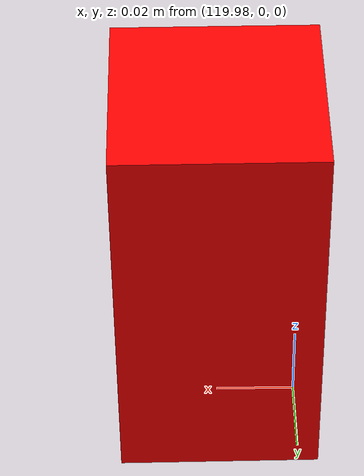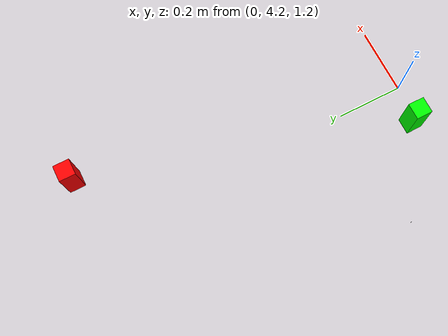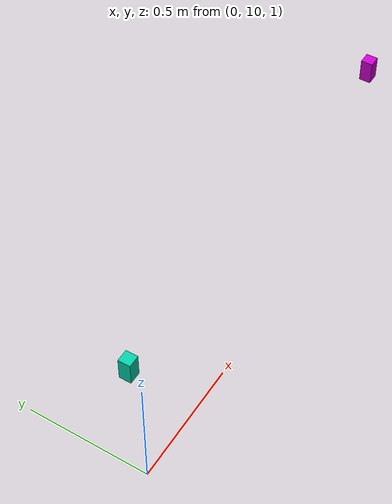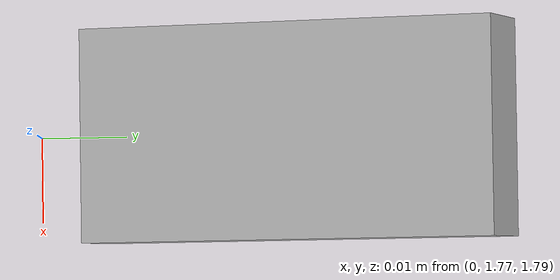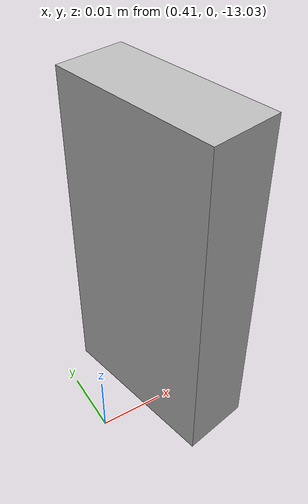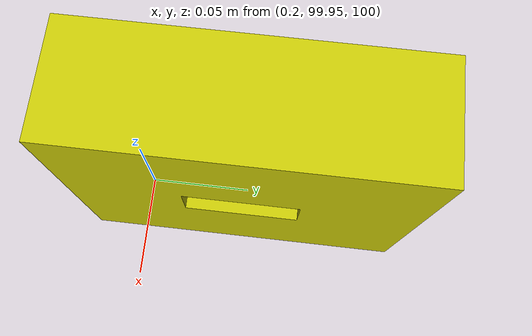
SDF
<?xml version="1.0" ?>
<sdf version="1.4">

  <world name="default">
    <include>
      <uri>model://ground_plane</uri>
      <surface>
          <contact>
            <ode>
              <kp>900000000.0</kp>
              <kd>800000000.0</kd>
            </ode>
          </contact>
          <friction>
            <ode>
              <mu>1.0</mu>
              <mu2>1.0</mu2>
              <fdir1>1.0 1.0 1.0</fdir1>
              <slip1>0.0</slip1>
              <slip2>0.0</slip2>
            </ode>
          </friction>
        </surface>
    </include>

    <scene>
      <ambient>0.45 0.45 0.45 1.0 </ambient>
      <background>0 0 0 0</background>
    </scene>

    <model name='lab_light_1'>
    <static>0</static>
    <link name='lab_light_1_link'>
      <gravity>0</gravity>
      <inertial>
        <mass>5.0</mass>
        <inertia>
          <ixx>0.083</ixx>
          <ixy>0.0</ixy>
          <ixz>0.0</ixz>
          <iyy>0.083</iyy>
          <iyz>0.0</iyz>
          <izz>0.083</izz>
        </inertia>
      </inertial>
      <light type="directional" name="light">
      <pose>0 0 -10 0 0 0</pose>
      <diffuse>0.8 0.8 0.8 1</diffuse>
      <specular>0.2 0.2 0.2 1</specular>
      <attenuation>
        <range>500</range>
        <constant>0.9</constant>
        <linear>0.01</linear>
        <quadratic>0.001</quadratic>
      </attenuation>
      <direction>-0.5 -0.3 1.0</direction>
    </light>
    </link>
    </model>

    <model name="Cube_1">
    <pose>120 0 0 0 0 0</pose>
    <static>false</static>
    <link name="Cube_1_link">
    <gravity>0</gravity>
      <inertial>
        <mass>0.05</mass>
        <inertia>
          <ixx>0.083</ixx>
          <ixy>0.0</ixy>
          <ixz>0.0</ixz>
          <iyy>0.083</iyy>
          <iyz>0.0</iyz>
          <izz>0.083</izz>
        </inertia>
      </inertial>
      <visual name="visual">
        <geometry>
        <mesh><uri>model://meshes/objects/Cube_1.dae</uri></mesh>
        </geometry>
      </visual>
    </link>
  </model>

    <model name="Cube_2">
    <pose>110 0.1 0 0 0 0</pose>
    <static>false</static>
    <link name="Cube_2_link">
    <gravity>0</gravity>
      <inertial>
        <mass>0.05</mass>
        <inertia>
          <ixx>0.083</ixx>
          <ixy>0.0</ixy>
          <ixz>0.0</ixz>
          <iyy>0.083</iyy>
          <iyz>0.0</iyz>
          <izz>0.083</izz>
        </inertia>
      </inertial>
      <visual name="visual">
        <geometry>
          <mesh><uri>model://meshes/objects/Cube_2.dae</uri></mesh>
        </geometry>
      </visual>
    </link>
  </model>

    <model name="Inv_U">
    <pose>0.1 110 0 0 0 0</pose>
    <static>false</static>
    <link name="Inv_U_link">
    <gravity>0</gravity>
      <inertial>
        <mass>5.0</mass>
        <inertia>
          <ixx>0.083</ixx>
          <ixy>0.0</ixy>
          <ixz>0.0</ixz>
          <iyy>0.083</iyy>
          <iyz>0.0</iyz>
          <izz>0.083</izz>
        </inertia>
      </inertial>
      <visual name="visual">
        <geometry>
          <mesh><uri>model://meshes/objects/Inv_U.dae</uri></mesh>
        </geometry>
      </visual>
    </link>
  </model>

    <model name="Cube_3">
    <pose>0.1 21.2 1.2 0 0 0</pose>
    <static>false</static>
    <link name="Cube_3_link">
    <gravity>1</gravity>
      <inertial>
        <mass>0.05</mass>
        <inertia>
          <ixx>0.083</ixx>
          <ixy>0.0</ixy>
          <ixz>0.0</ixz>
          <iyy>0.083</iyy>
          <iyz>0.0</iyz>
          <izz>0.083</izz>
        </inertia>
      </inertial>
      <collision name="collision">
        <geometry>
          <mesh><uri>model://meshes/objects/Cube_3.dae</uri></mesh>
          <box>
            <size>0.05 0.05 0.05</size>
          </box>
        </geometry>
      </collision>
      <visual name="visual">
        <geometry>
          <mesh><uri>model://meshes/objects/Cube_3.dae</uri></mesh>
        </geometry>
      </visual>
    </link>
  </model>

      <model name="Cube_4">
    <pose>-0.1 4.2 1.2 0 0 0</pose>
    <static>false</static>
    <link name="Cube_4_link">
    <gravity>1</gravity>
      <inertial>
        <mass>0.05</mass>
        <inertia>
          <ixx>0.083</ixx>
          <ixy>0.0</ixy>
          <ixz>0.0</ixz>
          <iyy>0.083</iyy>
          <iyz>0.0</iyz>
          <izz>0.083</izz>
        </inertia>
      </inertial>
      <collision name="collision">
        <geometry>
          <mesh><uri>model://meshes/objects/Cube_4.dae</uri></mesh>
        </geometry>
        <surface>
        <friction>
          <torsional>
            <coefficient>10.0</coefficient>
            <use_patch_radius>true</use_patch_radius>
            <patch_radius>0.05</patch_radius>
          </torsional>
        </friction>
        <contact>
          <poissons_ratio>0.5</poissons_ratio>
          <elastic_modulus>1e8</elastic_modulus>
        </contact>
      </surface>
      </collision>
      <mu1>10</mu1>
      <mu2>10</mu2>
      <visual name="visual">
        <geometry>
          <mesh><uri>model://meshes/objects/Cube_4.dae</uri></mesh>
        </geometry>
      </visual>
    </link>
  </model>

      <model name="Cube_5">
    <pose>0.2 5.2 1.2 0 0 0</pose>
    <static>false</static>
    <link name="Cube_5_link">
    <gravity>1</gravity>
      <inertial>
        <mass>0.05</mass>
        <inertia>
          <ixx>0.083</ixx>
          <ixy>0.0</ixy>
          <ixz>0.0</ixz>
          <iyy>0.083</iyy>
          <iyz>0.0</iyz>
          <izz>0.083</izz>
        </inertia>
      </inertial>
      <collision name="collision">
        <geometry>
          <mesh><uri>model://meshes/objects/Cube_5.dae</uri></mesh>
        </geometry>
      </collision>
      <visual name="visual">
                <geometry>
          <mesh><uri>model://meshes/objects/Cube_5.dae</uri></mesh>
        </geometry>
      </visual>
    </link>
  </model>

      <model name="Cube_6">
    <pose>0.2 10.2 1.2 0 0 0</pose>
    <static>false</static>
    <link name="Cube_6_link">
    <gravity>1</gravity>
      <inertial>
        <mass>0.05</mass>
        <inertia>
          <ixx>0.083</ixx>
          <ixy>0.0</ixy>
          <ixz>0.0</ixz>
          <iyy>0.083</iyy>
          <iyz>0.0</iyz>
          <izz>0.083</izz>
        </inertia>
      </inertial>
      <collision name="collision">
        <geometry>
          <mesh><uri>model://meshes/objects/Cube_6.dae</uri></mesh>
        </geometry>
      </collision>
      <visual name="visual">
        <geometry>
          <mesh><uri>model://meshes/objects/Cube_6.dae</uri></mesh>
        </geometry>
      </visual>
    </link>
  </model>

     <model name="Cube_7">
    <pose>2 10.2 1.2 0 0 0</pose>
    <static>false</static>
    <link name="Cube_7_link">
    <gravity>1</gravity>
      <inertial>
        <mass>0.05</mass>
        <inertia>
          <ixx>0.083</ixx>
          <ixy>0.0</ixy>
          <ixz>0.0</ixz>
          <iyy>0.083</iyy>
          <iyz>0.0</iyz>
          <izz>0.083</izz>
        </inertia>
      </inertial>
      <collision name="collision">
        <geometry>
          <mesh><uri>model://meshes/objects/Cube_7.dae</uri></mesh>
        </geometry>
      </collision>
      <visual name="visual">
        <geometry>
          <mesh><uri>model://meshes/objects/Cube_7.dae</uri></mesh>
        </geometry>
      </visual>
    </link>
  </model>

   <model name="Square">
    <pose>0.2 100 100 0 0 0</pose>
    <static>false</static>
    <link name="Square_link">
    <gravity>0</gravity>
      <inertial>
        <mass>0.05</mass>
        <inertia> <!-- inertias are tricky to compute -->
          <ixx>0.083</ixx>       <!-- for a box: ixx = 0.083 * mass * (y*y + z*z) -->
          <ixy>0.0</ixy>         <!-- for a box: ixy = 0 -->
          <ixz>0.0</ixz>         <!-- for a box: ixz = 0 -->
          <iyy>0.083</iyy>       <!-- for a box: iyy = 0.083 * mass * (x*x + z*z) -->
          <iyz>0.0</iyz>         <!-- for a box: iyz = 0 -->
          <izz>0.083</izz>       <!-- for a box: izz = 0.083 * mass * (x*x + y*y) -->
        </inertia>
      </inertial>
      <visual name="visual">

        <geometry>
          <mesh><uri>model://meshes/objects/Square.dae</uri></mesh>
        </geometry>
      </visual>
    </link>
  </model>

  <model name="topdown_camera">
      <pose>0.3556 0.0 3 3.14 1.57 0</pose>

      <static>true</static>
      <link name="camera_link">
      <visual name='topdown_visual'>
        <geometry>
          <box>
            <size>0.001 0.001 0.001</size>
          </box>
        </geometry>
      </visual>
        <sensor type="camera" name="topdown_camera">
          <update_rate>100</update_rate>
          <visualize>true</visualize>
          <camera name="head">
            <horizontal_fov>1.3962634</horizontal_fov>
            <image>
              <width>1920</width>
              <height>1080</height>
              <format>R8G8B8</format>
            </image>
            <clip>
              <near>0.02</near>
              <far>15</far>
            </clip>
          </camera>
          <plugin name="camera_controller" filename="libgazebo_ros_camera.so">
            <baseline>0.2</baseline>
            <alwaysOn>false</alwaysOn>
            <updateRate>100.0</updateRate>
            <cameraName>topdown_camera</cameraName>
            <imageTopicName>/topdown_camera/color/image_raw</imageTopicName>
            <cameraInfoTopicName>/topdown_camera/color/camera_info</cameraInfoTopicName>
            <frameName>frame</frameName>
            <distortionK1>0.00000001</distortionK1>
            <distortionK2>0.00000001</distortionK2>
            <distortionK3>0.00000001</distortionK3>
            <distortionT1>0.00000001</distortionT1>
            <distortionT2>0.00000001</distortionT2>
          </plugin>
        </sensor>
      </link>
    </model>

     <model name="downtop_camera">
      <pose>0.42 0 -13 0 -1.57 0.2</pose>
      <static>true</static>
      <link name="camera_link">
      <visual name='downtop_visual'>
        <geometry>
          <box>
            <size>0.05 0.025 0.01</size>
          </box>
        </geometry>
      </visual>
        <sensor type="depth" name="downtop_camera">
          <update_rate>30</update_rate>
          <visualize>true</visualize>
          <camera name="head">
            <horizontal_fov>0.10</horizontal_fov>
            <image>
              <width>1200</width>
              <height>1200</height>
              <format>R8G8B8</format>
            </image>
            <clip>
              <near>0.02</near>
              <far>300</far>
            </clip>
            <lens>
              <type>orthographic</type>
            </lens>
          </camera>
           <plugin name='camera_ros_controller' filename='libgazebo_ros_camera.so'>
            <baseline>0.2</baseline>
            <alwaysOn>false</alwaysOn>
            <updateRate>30.0</updateRate>
            <cameraName>downtop_camera</cameraName>
            <imageTopicName>/downtop_camera/image_raw</imageTopicName>
            <cameraInfoTopicName>/downtop_camera/camera_info</cameraInfoTopicName>
            <pointCloudCutoffMax>10.0</pointCloudCutoffMax>
            <distortionK1>0.00000001</distortionK1>
            <distortionK2>0.00000001</distortionK2>
            <distortionK3>0.00000001</distortionK3>
            <distortionT1>0.00000001</distortionT1>
            <distortionT2>0.00000001</distortionT2>
          </plugin>
        </sensor>
      </link>
    </model>

    <model name="frontdown_rgb">
      <!-- pose with working cam to pose projection -->

      <pose>0.0 1.8 1.8 3.14159 2.8 1.570796</pose>
      <static>true</static>
      <link name="rgb_camera_link">
      <visual name='frontdown_rgb_visual'>
        <geometry>
          <box>
            <size>0.05 0.025 0.01</size>
          </box>
        </geometry>
        </visual>
        <sensor name='frontdown_rgb' type='camera'>
          <camera name='frontdown_rgb'>
            <horizontal_fov>1.570796</horizontal_fov>
            <image>
              <width>1280</width>
              <height>720</height>
              <format>R8G8B8</format>
            </image>
            <clip>
              <near>0.1</near>
              <far>100</far>
            </clip>
          </camera>
          <always_on>1</always_on>
          <update_rate>30</update_rate>
          <visualize>0</visualize>
          <plugin name='camera_ros_controller' filename='libgazebo_ros_camera.so'>
            <baseline>0.2</baseline>
            <alwaysOn>false</alwaysOn>
            <updateRate>30.0</updateRate>
            <cameraName>frontdown_rgb</cameraName>
            <imageTopicName>/frontdown_rgb/image_raw</imageTopicName>
            <cameraInfoTopicName>/frontdown_rgb/camera_info</cameraInfoTopicName>
            <pointCloudCutoffMax>10.0</pointCloudCutoffMax>
            <distortionK1>0.00000001</distortionK1>
            <distortionK2>0.00000001</distortionK2>
            <distortionK3>0.00000001</distortionK3>
            <distortionT1>0.00000001</distortionT1>
            <distortionT2>0.00000001</distortionT2>
          </plugin>
        </sensor>
      </link>
    </model>

     <model name="frontdown_depth">
      <!-- pose with working cam to pose projection -->

      <pose>0.0 1.8 1.8 3.14159 2.8 1.570796</pose>
      <static>true</static>
      <link name="depth_camera_link">
      <visual name='frontdown_depth_visual'>
        <geometry>
          <box>
            <size>0.05 0.025 0.01</size>
          </box>
        </geometry>
        </visual>
        <sensor type="depth" name="frontdown_depth">
          <update_rate>30</update_rate>
          <visualize>false</visualize>
          <camera name="frontdown_depth">
            <horizontal_fov>1.570796</horizontal_fov>
            <image>
              <width>1280</width>
              <height>720</height>
              <format>R8G8B8</format>
            </image>
            <clip>
              <near>0.02</near>
              <far>100.8</far>
            </clip>
            </camera>
          <plugin name="camera_controller" filename="libgazebo_ros_openni_kinect.so">
            <baseline>0.2</baseline>
            <alwaysOn>false</alwaysOn>
            <updateRate>30.0</updateRate>
            <cameraName>frontdown_depth</cameraName>
            <imageTopicName>/frontdown_depth/color/image_raw</imageTopicName>
            <cameraInfoTopicName>/frontdown_camera/color/camera_info</cameraInfoTopicName>
            <depthImageTopicName>/frontdown_depth/depth/image_raw</depthImageTopicName>
            <depthImageInfoTopicName>/frontdown_depth/depth/camera_info</depthImageInfoTopicName>
            <pointCloudTopicName>/frontdown_depth/depth/points</pointCloudTopicName>
            <frameName>frontdown_depth_frame</frameName>
            <pointCloudCutoff>0.2</pointCloudCutoff>
            <pointCloudCutoffMax>10.0</pointCloudCutoffMax>
            <distortionK1>0.00000001</distortionK1>
            <distortionK2>0.00000001</distortionK2>
            <distortionK3>0.00000001</distortionK3>
            <distortionT1>0.00000001</distortionT1>
            <distortionT2>0.00000001</distortionT2>
          </plugin>
        </sensor>
      </link>
    </model>

  </world>
</sdf>
